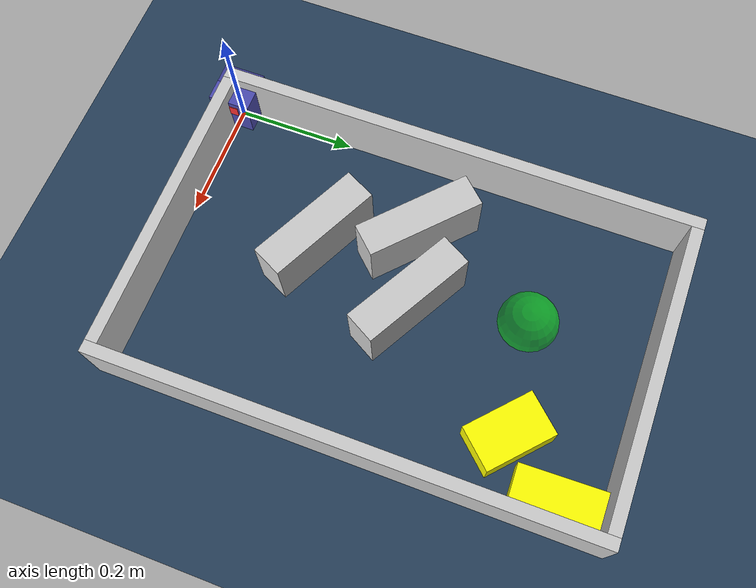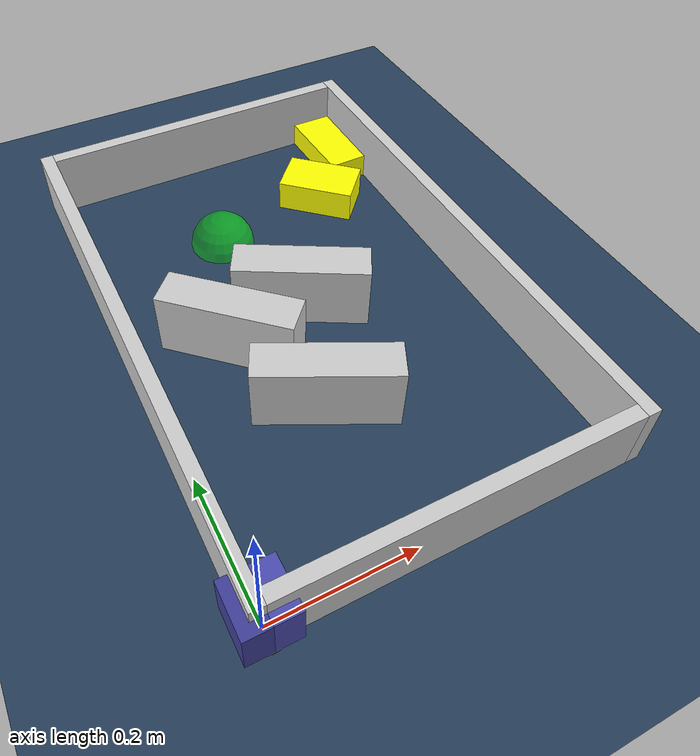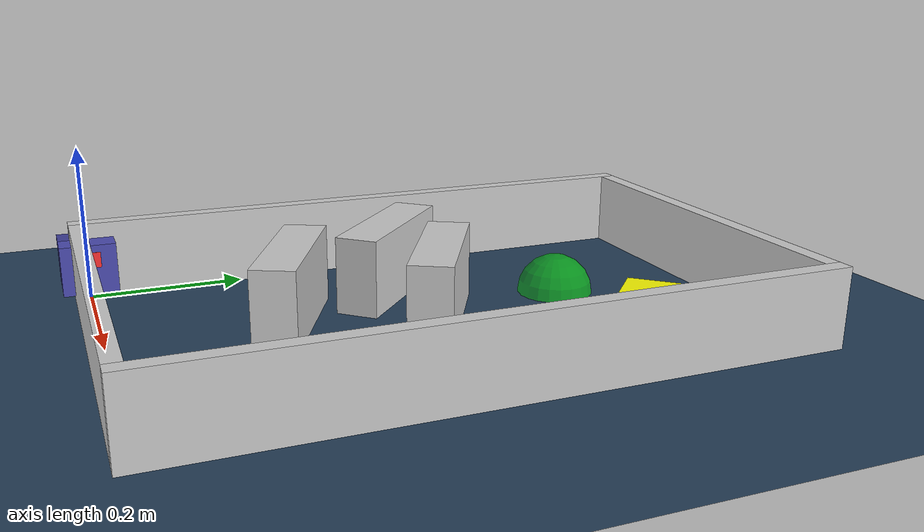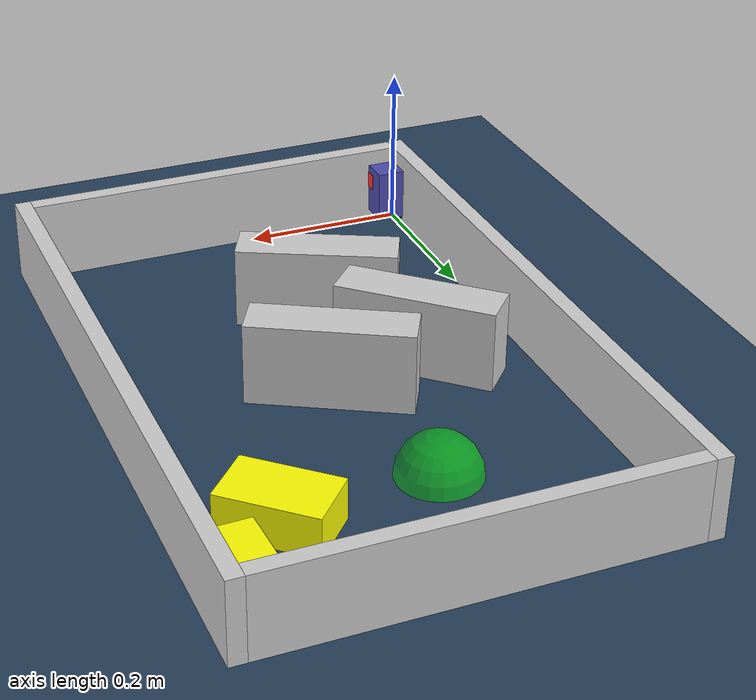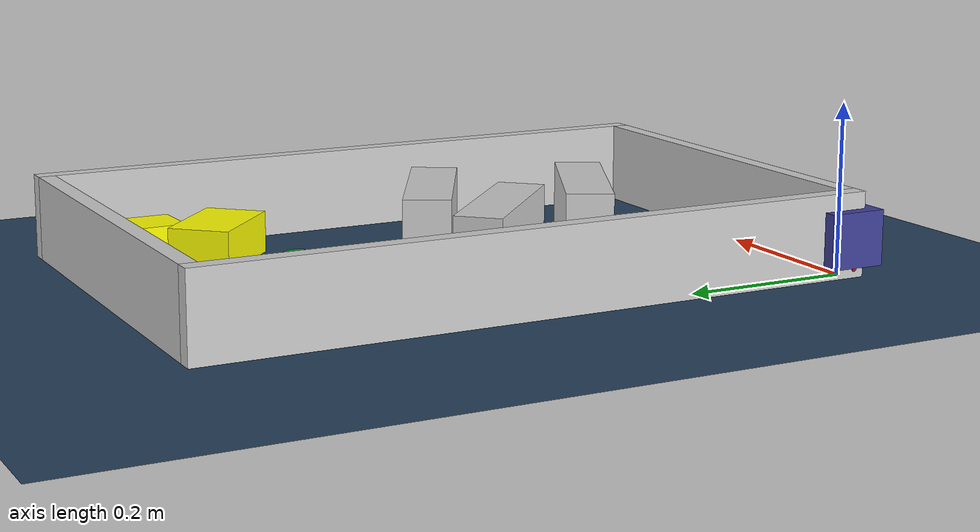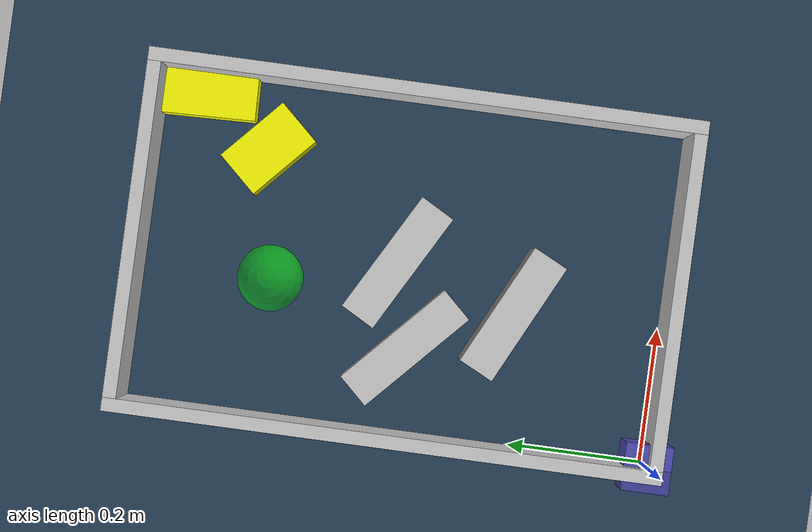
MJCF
<?xml version="1.0" ?>
<mujoco model="generated_environment">
  <option cone="elliptic" integrator="implicitfast" iterations="100" timestep="0.002"/>
  <default>
    <geom density="1"/>
  </default>
  <asset>
    <texture builtin="gradient" height="3072" rgb1="0.3 0.5 0.7" rgb2="0 0 0" type="skybox" width="512"/>
    <texture builtin="checker" height="300" mark="edge" markrgb="0.8 0.8 0.8" name="groundplane" rgb1="0.2 0.3 0.4" rgb2="0.1 0.2 0.3" type="2d" width="300"/>
    <material name="groundplane" reflectance="0.2" texrepeat="5 5" texture="groundplane" texuniform="true"/>
    <material name="robot" rgba="1.0 1.0 0.0 1.0"/>
  </asset>
  <include file="/home/dhruv/projects_dhruv/namo/namo_cpp/test_xml/little-car-modeling-package/assets/mjcf/little_car.xml"/>
  <worldbody>
    <light dir="0 0 -1" directional="true" pos="0 0 1.5"/>
    <geom condim="4" friction="0.5 0.005 0.001" material="groundplane" name="floor" size="0 0 0.05" type="plane"/>
    <body name="walls">
      <geom name="wall_1" condim="4" pos="-0.01 0.3875 0.05" friction="1 0.005 0.0001" rgba="0.800000011920929 0.800000011920929 0.800000011920929 1.0" size="0.01 0.40750000000000003 0.05" type="box"/>
      <geom name="wall_2" condim="4" pos="0.5 0.3875 0.05" friction="1 0.005 0.0001" rgba="0.800000011920929 0.800000011920929 0.800000011920929 1.0" size="0.01 0.40750000000000003 0.05" type="box"/>
      <geom name="wall_3" condim="4" pos="0.245 -0.01 0.05" friction="1 0.005 0.0001" rgba="0.800000011920929 0.800000011920929 0.800000011920929 1.0" size="0.245 0.01 0.05" type="box"/>
      <geom name="wall_4" condim="4" pos="0.245 0.785 0.05" friction="1 0.005 0.0001" rgba="0.800000011920929 0.800000011920929 0.800000011920929 1.0" size="0.245 0.01 0.05" type="box"/>
    </body>
    <body name="obstacle_1_movable">
      <geom name="obstacle_1_movable" condim="4" pos="0.46019541509892486 0.712178891640615 0.02" quat="-0.015471393171838679 0 0 0.9998803108339129" friction="1 0.005 0.0001" rgba="1 1 0 1" size="0.035 0.075 0.02" type="box" mass="0.1"/>
      <joint type="free"/>
    </body>
    <body name="obstacle_2_movable">
      <geom name="obstacle_2_movable" condim="4" pos="0.38988884357597087 0.6103458072060051 0.025" quat="-0.40310424795171 0 0 0.91515406641903" friction="1 0.005 0.0001" rgba="1 1 0 1" size="0.0375 0.06 0.025" type="box" mass="0.1"/>
      <joint type="free"/>
    </body>
    <body name="wall_5">
      <geom name="wall_5" condim="4" pos="0.19646295203204603 0.22372691857771074 0.05" quat="-0.5279031314082282 0 0 0.8493045883835709" friction="1 0.005 0.0001" rgba="0.800000011920929 0.800000011920929 0.800000011920929 1.0" size="0.0275 0.0975 0.05" type="box"/>
    </body>
    <body name="wall_6">
      <geom name="wall_6" condim="4" pos="0.24836206646039663 0.39897638543697517 0.05" quat="0.8615907371315125 0 0 0.5076035871516049" friction="1 0.005 0.0001" rgba="0.800000011920929 0.800000011920929 0.800000011920929 1.0" size="0.0275 0.0975 0.05" type="box"/>
    </body>
    <body name="wall_7">
      <geom name="wall_7" condim="4" pos="0.12774470879970823 0.3722901787742425 0.05" quat="-0.39963314247177245 0 0 0.9166751613511386" friction="1 0.005 0.0001" rgba="0.800000011920929 0.800000011920929 0.800000011920929 1.0" size="0.0275 0.0975 0.05" type="box"/>
    </body>
    <site name="goal" type="sphere" size="0.05 0.05 0.05" rgba="0 1 0 0.5" pos="0.200793 0.586272 0.0"/>
  </worldbody>
</mujoco>

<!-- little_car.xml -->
<mujoco model="little_car">
  <compiler angle="radian" autolimits="true"/>
  <default>
    <geom condim="4"/>
    <joint damping="0.01" armature="0.0001"/>
  </default>
  <worldbody>
    <body name="car" pos="0 0 0.010000">
      <freejoint name="car_freejoint"/>
      <inertial pos="0.000000 0 0.037500" mass="0.350000"
                diaginertia="0.000266 0.000266 0.000286"/>
      <geom name="front_chassis_collision" type="box" pos="0.017500 0 0.037500"
            size="0.017500 0.035000 0.032500"
            rgba="0.3 0.3 0.7 1"/>
      <geom name="rear_chassis_collision" type="box" pos="-0.017500 0 0.037500"
            size="0.017500 0.035000 0.032500"
            rgba="0.25 0.25 0.6 1"/>
      <geom name="front_marker" type="box" pos="0.034000 0 0.050500"
            size="0.002000 0.015000 0.010000"
            rgba="1.0 0.2 0.2 1" contype="0" conaffinity="0"/>

      <body name="rear_support_body" pos="-0.030000 0.000000 0.002500">
        <joint name="rear_caster_joint" type="ball" damping="0.0001"/>
        <inertial pos="0 0 0" mass="0.025000"
                  diaginertia="0.000001 0.000001 0.000001"/>
        <geom name="rear_support" type="sphere"
              pos="0 0 0"
              size="0.002500"
              friction="0.000000 0.000000 0.000000"
              rgba="0.7 0.1 0.1 1"/>
      </body>

      <body name="front_support_body" pos="0.030000 0.000000 0.002500">
        <joint name="front_caster_joint" type="ball" damping="0.0001"/>
        <inertial pos="0 0 0" mass="0.025000"
                  diaginertia="0.000001 0.000001 0.000001"/>
        <geom name="front_support" type="sphere"
              pos="0 0 0"
              size="0.002500"
              friction="0.000000 0.000000 0.000000"
              rgba="0.1 0.7 0.1 1"/>
      </body>

      <body name="left_wheel" pos="0.000000 0.034000 0.015000">
        <inertial pos="0 0 0" mass="0.050000"
                  diaginertia="0.000003 0.000006 0.000003"/>
        <joint name="left_wheel_joint" type="hinge" axis="0 1 0"/>
        <geom name="left_wheel_collision" type="cylinder" size="0.015000 0.000500"
              euler="1.57079632679 0 0" rgba="0.1 0.1 0.1 1"/>
      </body>

      <body name="right_wheel" pos="0.000000 -0.034000 0.015000">
        <inertial pos="0 0 0" mass="0.050000"
                  diaginertia="0.000003 0.000006 0.000003"/>
        <joint name="right_wheel_joint" type="hinge" axis="0 1 0"/>
        <geom name="right_wheel_collision" type="cylinder" size="0.015000 0.000500"
              euler="1.57079632679 0 0" rgba="0.1 0.1 0.1 1"/>
      </body>
    </body>
  </worldbody>
  <contact>
    <exclude body1="car" body2="left_wheel"/>
    <exclude body1="car" body2="right_wheel"/>
  </contact>
  <actuator>
    <velocity name="left_wheel_drive" joint="left_wheel_joint"
              ctrlrange="-25.000000 25.000000"
              kv="0.750000" forcerange="-0.500000 0.500000"/>
    <velocity name="right_wheel_drive" joint="right_wheel_joint"
              ctrlrange="-25.000000 25.000000"
              kv="0.750000" forcerange="-0.500000 0.500000"/>
  </actuator>
</mujoco>
